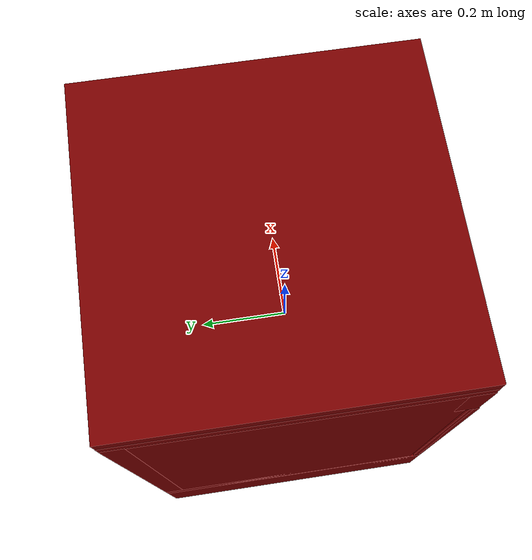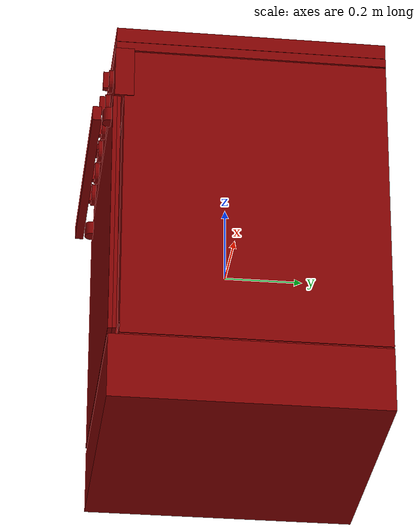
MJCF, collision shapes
<?xml version='1.0' encoding='UTF-8'?>
<mujoco model="model">
  <option timestep="0.002" gravity="0.0 0.0 -9.81"/>
  <compiler angle="radian"/>
  <asset>
    <mesh file="visuals/door.obj" name="door_vis"/>
    <mesh file="visuals/door_Clear.obj" name="door_Clear_vis"/>
    <mesh file="visuals/knob_front_left.obj" name="knob_front_left_vis"/>
    <mesh file="visuals/knob_front_right.obj" name="knob_front_right_vis"/>
    <mesh file="visuals/knob_rear_left.obj" name="knob_rear_left_vis"/>
    <mesh file="visuals/knob_rear_right.obj" name="knob_rear_right_vis"/>
    <mesh file="visuals/knob_temp.obj" name="knob_temp_vis"/>
    <mesh file="visuals/knob_time.obj" name="knob_time_vis"/>
    <mesh file="visuals/rack0.obj" name="rack0_vis"/>
    <mesh file="visuals/Body001.obj" name="Body001_vis"/>
    <texture file="visuals/T_BC001.png" name="Body001_material" type="2d"/>
    <material name="Body001_material" rgba="1 1 1 1.0" texture="Body001_material" shininess="1" specular="1"/>
    <texture file="visuals/T_BC001.png" name="door_material" type="2d"/>
    <material name="door_material" rgba="1 1 1 1.0" texture="door_material" shininess="1" specular="1"/>
    <texture file="visuals/T_BC001.png" name="door_Clear_material" type="2d"/>
    <material name="door_Clear_material" rgba="1 1 1 0.8" texture="door_Clear_material" shininess="0.5" specular="0.3103448502657381"/>
    <texture file="visuals/T_BC001.png" name="knob_front_left_material" type="2d"/>
    <material name="knob_front_left_material" rgba="1 1 1 1.0" texture="knob_front_left_material" shininess="0.5" specular="1"/>
    <texture file="visuals/T_BC001.png" name="knob_front_right_material" type="2d"/>
    <material name="knob_front_right_material" rgba="1 1 1 1.0" texture="knob_front_right_material" shininess="0.5" specular="1"/>
    <texture file="visuals/T_BC001.png" name="knob_rear_left_material" type="2d"/>
    <material name="knob_rear_left_material" rgba="1 1 1 1.0" texture="knob_rear_left_material" shininess="0.5" specular="1"/>
    <texture file="visuals/T_BC001.png" name="knob_rear_right_material" type="2d"/>
    <material name="knob_rear_right_material" rgba="1 1 1 1.0" texture="knob_rear_right_material" shininess="0.5" specular="1"/>
    <texture file="visuals/T_BC001.png" name="knob_temp_material" type="2d"/>
    <material name="knob_temp_material" rgba="1 1 1 1.0" texture="knob_temp_material" shininess="0.5" specular="1"/>
    <texture file="visuals/T_BC001.png" name="knob_time_material" type="2d"/>
    <material name="knob_time_material" rgba="1 1 1 1.0" texture="knob_time_material" shininess="0.5" specular="1"/>
    <texture file="visuals/T_BC001.png" name="rack0_material" type="2d"/>
    <material name="rack0_material" rgba="1 1 1 1.0" texture="rack0_material" shininess="3" specular="3"/>
  </asset>
  <default>
    <default class="visual">
      <geom conaffinity="0" contype="0" group="1" type="mesh"/>
    </default>
    <default class="collision">
      <geom group="0" rgba="0.5 0 0 0.5"/>
    </default>
    <default class="spawn">
      <geom group="0" rgba="1 1 1 0.5" contype="0" conaffinity="0"/>
      <site group="0" rgba="1 1 1 0.5"/>
    </default>
    <default class="region">
      <geom group="1" conaffinity="0" contype="0" rgba="0 1 0 0"/>
    </default>
  </default>
  <worldbody>
    <body>
      <body name="object">
        <geom mesh="Body001_vis" type="mesh" solimp="0.998 0.998 0.001" solref="0.001 1" friction="0.95 0.3 0.1" class="visual" material="Body001_material"/>
        <geom class="collision" type="box" pos="-1.594889909029007e-08 -0.29763758182525635 0.39089781045913696" size="0.34916573762893677 0.024249166250228882 0.06979788094758987" quat="1.0 0.0 0.0 0.0"/>
        <geom class="collision" type="box" pos="0.28373390436172485 0.0533357597887516 -0.038145195692777634" size="0.01380211766809225 0.26400789618492126 0.011560178361833096" quat="1.0 0.0 0.0 0.0"/>
        <geom class="collision" type="box" pos="-0.2862478196620941 0.05319228023290634 -0.037999607622623444" size="0.013049907051026821 0.26415136456489563 0.01141459122300148" quat="1.0 0.0 0.0 0.0"/>
        <geom class="collision" type="box" pos="-0.0023568759206682444 0.35140305757522583 0.07148700207471848" size="0.3467247784137726 0.022162484005093575 0.39027759432792664" quat="1.0 0.0 0.0 0.0"/>
        <geom class="collision" type="box" pos="-0.0003473036631476134 0.038771625608205795 0.289108008146286" size="0.34504303336143494 0.33478638529777527 0.014134481549263" quat="1.0 0.0 0.0 0.0"/>
        <geom class="collision" type="box" pos="-0.0023568759206682444 0.03796178475022316 -0.34920012950897217" size="0.3467247784137726 0.335603803396225 0.03138244152069092" quat="1.0 0.0 0.0 0.0"/>
        <geom class="collision" type="box" pos="0.31373733282089233 0.038002416491508484 0.052152544260025024" size="0.03305840864777565 0.33556315302848816 0.40081486105918884" quat="1.0 0.0 0.0 0.0"/>
        <geom class="collision" type="box" pos="-0.31560271978378296 0.038002416491508484 0.05432949587702751" size="0.03347892314195633 0.33556315302848816 0.4029918313026428" quat="1.0 0.0 0.0 0.0"/>
        <geom class="collision" type="box" pos="0.0005319276824593544 0.026697685942053795 0.5009087920188904" size="0.3482872545719147 0.3466367721557617 0.02023972012102604" quat="1.0 0.0 0.0 0.0"/>
        <geom class="collision" type="box" pos="-0.0003375217493157834 0.026780445128679276 0.4718433618545532" size="0.34828776121139526 0.3467795252799988 0.01574772037565708" quat="1.0 0.0 0.0 0.0"/>
        <geom class="collision" type="box" pos="-0.00021924334578216076 0.023974500596523285 -0.43770742416381836" size="0.3488624393939972 0.34959110617637634 0.08330636471509933" quat="1.0 0.0 0.0 0.0"/>
        <body name="door">
          <joint axis="1.0 0.0 0.0" pos="9.559883551446546e-09 -0.3246775269508362 -0.33974993228912354" limited="true" name="door_joint" range="0.0 1.5707963267948966" type="hinge" damping="1" frictionloss="1" armature=".01" stiffness="0.05"/>
          <geom mesh="door_vis" type="mesh" solimp="0.998 0.998 0.001" solref="0.001 1" friction="0.95 0.3 0.1" class="visual" material="door_material"/>
          <geom class="collision" type="box" pos="-0.0022814508993178606 -0.31509557366371155 0.04257680103182793" size="0.31797417998313904 0.010229974053800106 0.23963330686092377" quat="1.0 0.0 0.0 0.0"/>
          <geom class="collision" type="box" pos="0.0 -0.31615501642227173 -0.01153815072029829" size="0.34916576743125916 0.010176879353821278 0.32804685831069946" quat="1.0 0.0 0.0 0.0"/>
          <geom class="collision" type="cylinder" pos="-0.29542088508605957 -0.3301635980606079 0.2858274579048157" size="0.018252719193696976 0.018252719193696976" quat="1.0 0.0 0.0 0.0"/>
          <geom class="collision" type="cylinder" pos="0.29499393701553345 -0.3301047682762146 0.2858274579048157" size="0.018252719193696976 0.018252719193696976" quat="1.0 0.0 0.0 0.0"/>
          <geom class="collision" type="box" pos="-0.0002522036083973944 -0.3626614511013031 0.2860453128814697" size="0.31082525849342346 0.01096201129257679 0.019551655277609825" quat="1.0 0.0 0.0 0.0" name="door_handle_main"/>
          <geom class="collision" type="box" pos="0.0 -0.3205585479736328 -0.01153815072029829" size="0.34916576743125916 0.005332788452506065 0.32804685831069946" quat="1.0 0.0 0.0 0.0" name="door_main"/>
          <body name="door_Clear">
            <geom mesh="door_Clear_vis" type="mesh" solimp="0.998 0.998 0.001" solref="0.001 1" friction="0.95 0.3 0.1" class="visual" material="door_Clear_material"/>
            <geom class="collision" type="box" pos="-0.0022814508993178606 -0.31509557366371155 0.04257680103182793" size="0.31797417998313904 0.010229974053800106 0.23963330686092377" quat="1.0 0.0 0.0 0.0"/>
          </body>
        </body>
        <body name="knob_front_left">
          <joint axis="0.0 -1.0 0.0" pos="-0.2887952923774719 -0.33584344387054443 0.39446955919265747" limited="true" name="knob_front_left_joint" range="0.0 3.141592653589793" type="hinge" damping="0.05" frictionloss="0.75" armature="1"/>
          <geom mesh="knob_front_left_vis" type="mesh" solimp="0.998 0.998 0.001" solref="0.001 1" friction="0.95 0.3 0.1" class="visual" material="knob_front_left_material"/>
          <geom class="collision" type="cylinder" pos="-0.2894299328327179 -0.3288230895996094 0.39446547627449036" size="0.028939034789800644 0.005482754670083523" quat="0.7071068286895752 0.7071067690849304 0.0 0.0" friction="100 0.5 0.01"/>
          <geom class="collision" type="box" pos="-0.2887952923774719 -0.3411925435066223 0.39446955919265747" size="0.00801808014512062 0.00690996740013361 0.02339768409729004" quat="1.0 0.0 0.0 0.0" name="knob_front_left_main" friction="100 0.5 0.01"/>
        </body>
        <body name="knob_front_right">
          <joint axis="0.0 -1.0 0.0" pos="0.29012277722358704 -0.33584344387054443 0.39446955919265747" limited="true" name="knob_front_right_joint" range="0.0 3.141592653589793" type="hinge" damping="0.05" armature="1" frictionloss="0.75"/>
          <geom mesh="knob_front_right_vis" type="mesh" solimp="0.998 0.998 0.001" solref="0.001 1" friction="0.95 0.3 0.1" class="visual" material="knob_front_right_material"/>
          <geom class="collision" type="cylinder" pos="0.29040977358818054 -0.3288230895996094 0.39446547627449036" size="0.028939034789800644 0.005482754670083523" quat="0.7071068286895752 0.7071067690849304 0.0 0.0" friction="100 0.5 0.01"/>
          <geom class="collision" type="box" pos="0.2903701663017273 -0.3411925435066223 0.39446955919265747" size="0.00801808014512062 0.00690996740013361 0.02339768409729004" quat="1.0 0.0 0.0 0.0" name="knob_front_right_main" friction="100 0.5 0.01"/>
        </body>
        <body name="knob_rear_left">
          <joint axis="0.0 -1.0 0.0" pos="-0.1715051829814911 -0.33584344387054443 0.39446955919265747" limited="true" name="knob_rear_left_joint" range="0.0 3.141592653589793" type="hinge" damping="0.05" armature="1" frictionloss="0.75"/>
          <geom mesh="knob_rear_left_vis" type="mesh" solimp="0.998 0.998 0.001" solref="0.001 1" friction="0.95 0.3 0.1" class="visual" material="knob_rear_left_material"/>
          <geom class="collision" type="cylinder" pos="-0.17139773070812225 -0.3288230895996094 0.39446547627449036" size="0.028939034789800644 0.005482754670083523" quat="0.7071068286895752 0.7071067690849304 0.0 0.0" friction="100 0.5 0.01"/>
          <geom class="collision" type="box" pos="-0.1715051829814911 -0.3411925435066223 0.39446955919265747" size="0.00801808014512062 0.00690996740013361 0.02339768409729004" quat="1.0 0.0 0.0 0.0" name="knob_rear_left_main" friction="100 0.5 0.01"/>
        </body>
        <body name="knob_rear_right">
          <joint axis="0.0 -1.0 0.0" pos="0.17350420355796814 -0.33584344387054443 0.39446955919265747" limited="true" name="knob_rear_right_joint" range="0.0 3.141592653589793" type="hinge" damping="0.05" armature="1" frictionloss="0.75"/>
          <geom mesh="knob_rear_right_vis" type="mesh" solimp="0.998 0.998 0.001" solref="0.001 1" friction="0.95 0.3 0.1" class="visual" material="knob_rear_right_material"/>
          <geom class="collision" type="cylinder" pos="0.1735302358865738 -0.3288230895996094 0.39446547627449036" size="0.028939034789800644 0.005482754670083523" quat="0.7071068286895752 0.7071067690849304 0.0 0.0" friction="100 0.5 0.01"/>
          <geom class="collision" type="box" pos="0.17350420355796814 -0.3411925435066223 0.39446955919265747" size="0.00801808014512062 0.00690996740013361 0.02339768409729004" quat="1.0 0.0 0.0 0.0" name="knob_rear_right_main" friction="100 0.5 0.01"/>
        </body>
        <body name="knob_temp">
          <joint axis="0.0 1.0 0.0" pos="0.05980800837278366 -0.33584344387054443 0.39446955919265747" limited="true" name="knob_temp_joint" range="0.0 5.585053606381854" type="hinge" damping="0.05" armature="1" frictionloss="0.75"/>
          <geom mesh="knob_temp_vis" type="mesh" solimp="0.998 0.998 0.001" solref="0.001 1" friction="0.95 0.3 0.1" class="visual" material="knob_temp_material"/>
          <geom class="collision" type="cylinder" pos="0.05992927402257919 -0.3288230895996094 0.39446547627449036" size="0.028939034789800644 0.005482754670083523" quat="0.7071068286895752 0.7071067690849304 0.0 0.0" friction="100 0.5 0.01"/>
          <geom class="collision" type="box" pos="0.05980800837278366 -0.3411925435066223 0.39446955919265747" size="0.00801808014512062 0.00690996740013361 0.02339768409729004" quat="1.0 0.0 0.0 0.0" name="knob_temp_main" friction="100 0.5 0.01"/>
        </body>
        <body name="knob_time">
          <joint axis="0.0 1.0 0.0" pos="-0.05584859102964401 -0.33584344387054443 0.3944695293903351" limited="true" name="knob_time_joint" range="0.0 5.235987755982989" type="hinge" damping="0.05" armature="1" frictionloss="0.75"/>
          <geom mesh="knob_time_vis" type="mesh" solimp="0.998 0.998 0.001" solref="0.001 1" friction="0.95 0.3 0.1" class="visual" material="knob_time_material"/>
          <geom class="collision" type="cylinder" pos="-0.05607583373785019 -0.3288230895996094 0.39446547627449036" size="0.028939034789800644 0.005482754670083523" quat="0.7071068286895752 0.7071067690849304 0.0 0.0" friction="100 0.5 0.01"/>
          <geom class="collision" type="box" pos="-0.05584859102964401 -0.3411925435066223 0.3944695293903351" size="0.02339768595993519 0.006909970659762621 0.008018084801733494" quat="1.0 0.0 0.0 0.0" name="knob_time_main" friction="100 0.5 0.01"/>
        </body>
        <body name="rack0">
          <geom class="region" name="reg_rack0" type="box" pos="-0.00018027424812316895 0.054929643869400024 0.12736374326050282" size="0.25439242815971375 0.25563929772377014 0.1459239831417799"/>
          <joint axis="0.0 -1.0 0.0" pos="-0.0013320501893758774 0.05472371354699135 -0.022496171295642853" limited="true" name="rack0_joint" range="0.0 0.5" type="slide" damping="1" frictionloss="1" armature=".01" stiffness="0.05"/>
          <geom mesh="rack0_vis" type="mesh" solimp="0.998 0.998 0.001" solref="0.001 1" friction="0.95 0.3 0.1" class="visual" material="rack0_material"/>
          <geom class="collision" type="box" pos="-0.0013610527385026217 0.05342525616288185 -0.022122923284769058" size="0.27556294202804565 0.25775256752967834 0.0022828688379377127" quat="1.0 0.0 0.0 0.0"/>
        </body>
        <geom class="region" name="reg_int" type="box" pos="-0.00139637291431427 0.012169793248176575 -0.02148406207561493" size="0.2776491323709488 0.31131061708927155 0.29264640605449677"/>
        <site type="cylinder" rgba="0.3 0.4 1 0.5" size="0.05156874284148216 0.00681568868458271" pos="-0.15075603127479553 0.15809021890163422 0.5072528719902039" name="burner_on_rear_left"/>
        <site type="cylinder" rgba="0.3 0.4 1 0.5" size="0.048575565218925476 0.006815702188760042" pos="-0.150647833943367 -0.10583272576332092 0.5072528719902039" name="burner_on_front_left"/>
        <site type="cylinder" rgba="0.3 0.4 1 0.5" size="0.038977060467004776 0.006815724074840546" pos="0.15346604585647583 -0.10587043315172195 0.5072528719902039" name="burner_on_front_right"/>
        <site type="cylinder" rgba="0.3 0.4 1 0.5" size="0.030003881081938744 0.006815693341195583" pos="0.15314030647277832 0.1579144299030304 0.5072529315948486" name="burner_on_rear_right"/>
        <site type="cylinder" rgba="0.5 0 0 0" size="0.048575565218925476 4.999999873689376e-05" pos="-0.150647833943367 -0.10583272576332092 0.5209000110626221" name="burner_front_left_place_site"/>
        <site type="cylinder" rgba="0.5 0 0 0" size="0.038977060467004776 4.999999873689376e-05" pos="0.15346604585647583 -0.10587043315172195 0.5209000110626221" name="burner_front_right_place_site"/>
        <site type="cylinder" rgba="0.5 0 0 0" size="0.05156874284148216 4.999999873689376e-05" pos="-0.15075603127479553 0.15809021890163422 0.5209000110626221" name="burner_rear_left_place_site"/>
        <site type="cylinder" rgba="0.5 0 0 0" size="0.030003881081938744 4.999999873689376e-05" pos="0.15314030647277832 0.1579144299030304 0.5209000706672668" name="burner_rear_right_place_site"/>
        <geom class="region" name="reg_main" type="box" pos="-1.3466770809600348e-08 0.023974483832716942 -0.029336271807551384" size="0.35016576743125916 0.35059107637405396 0.49267752265930176"/>
      </body>
    </body>
  </worldbody>
  <actuator>
    <motor name="door_joint_actuator" joint="door_joint" gear="20"/>
    <motor name="knob_front_left_joint_actuator" joint="knob_front_left_joint" gear="10"/>
    <motor name="knob_front_right_joint_actuator" joint="knob_front_right_joint" gear="10"/>
    <motor name="knob_rear_left_joint_actuator" joint="knob_rear_left_joint" gear="10"/>
    <motor name="knob_rear_right_joint_actuator" joint="knob_rear_right_joint" gear="10"/>
    <motor name="knob_temp_joint_actuator" joint="knob_temp_joint" gear="10"/>
    <motor name="knob_time_joint_actuator" joint="knob_time_joint" gear="10"/>
    <motor name="rack0_joint_actuator" joint="rack0_joint" gear="20"/>
  </actuator>
</mujoco>
